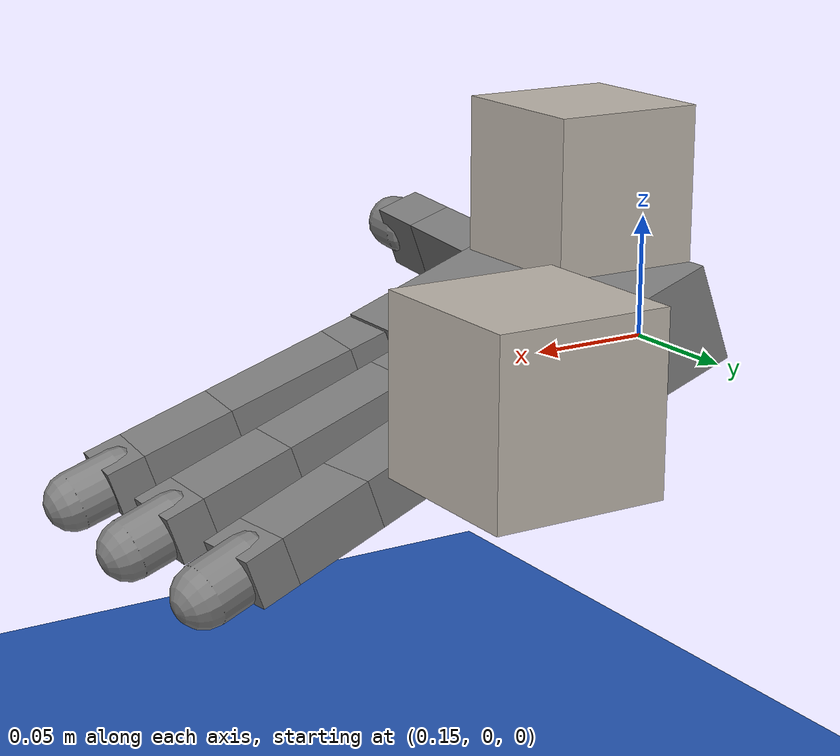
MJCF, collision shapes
<mujoco model="Allegro Hand Cube Rotation">
  <include file="../common.xml"/>

  <size memory="1M"/>

  <option integrator="implicitfast" iterations="100" ls_iterations="50"/>

  <custom>
    <!-- agent -->
    <numeric name="agent_planner" data="0" />
    <numeric name="agent_horizon" data="0.25" />
    <numeric name="agent_timestep" data="0.01" />
    <numeric name="agent_policy_width" data="0.0035" />
    <numeric name="sampling_spline_points" data="3" />
    <numeric name="sampling_exploration" data="0.2" />
    <numeric name="sampling_trajectories" data="125" />
    <numeric name="sampling_representation" data="0" />
    <numeric name="robust_xfrc" data="0.004" />
    <numeric name="gradient_spline_points" data="3" />
    <numeric name="stdev_min" data="0.2" />

    <!-- cem -->
    <numeric name="n_elites" data="10" />

    <!-- mppi -->
    <numeric name="mu_init" data="0.2" />
  </custom>

  <!-- Set the camera viewpoint -->
  <statistic extent="0.4" center="0.3 0.1 0"/>
  <visual>
    <quality shadowsize="8192"/>
    <global azimuth="180" elevation="-30"/>
  </visual>

  <!-- Set default friction coefficient -->
  <default>
    <geom friction=".3"/>
  </default>

  <!-- Create the scene, including floor and the interactive target cube. -->
  <worldbody>
    <light pos="0 -0.1 0.5" dir="0 0.2 -1" diffuse="0.7 0.7 0.7" specular="0.3 0.3 0.3"
        directional="true" castshadow="true"/>
    <geom name="floor" pos="0 0 -0.2" size="0 0 0.05" type="plane" material="blue_grid"/>
    <body name="goal" pos="0.325 0.17 0.0475">
      <joint type="ball" damping="0.001"/>
      <geom type="box" size=".03 .03 .03" mass=".124" material="cube" contype="0" conaffinity="0"/>
    </body>
  </worldbody>

  <sensor>
    <!-- Residuals -->
    <user name="Cube Position" dim="3" user="1 75 0 100 0.02 2"/>
    <user name="Cube Orientation" dim="3" user="0 7.5 0 10" />
    <user name="Cube Velocity" dim="3" user="0 10 0 20" />
    <user name="Actuation" dim="16" user="0 1 0.0 10" />
    <user name="Grasp" dim="16" user="0 0.1 0.0 10" />
    <user name="Joint Vel" dim="16" user="0 1.0e-3 0.0 0.1" />

    <!-- Measurements we want to use -->
    <framequat name="cube_goal_orientation" objtype="body" objname="goal"/>
  </sensor>

  <include file="cube.xml"/>
  <include file="right_hand.xml"/>

  <keyframe>
    <key qpos='1 0 0 0 0.2 0.025 0.075 1 0 0 0 0 0.58058 0.701595 0.538675 0 0.60767 0.758085 0.741625 0 0.8876 0.720425 0.5848 0.263 0.32612 1.08493 0.806715'/>
  </keyframe>
</mujoco>

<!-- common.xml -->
<mujoco>

  <visual>
    <headlight ambient=".4 .4 .4" diffuse=".8 .8 .8" specular="0.1 0.1 0.1"/>
    <map znear=".01"/>
    <quality shadowsize="2048"/>
    <global elevation="-15"/>
  </visual>

  <asset>
    <texture name="blue_grid" type="2d" builtin="checker" rgb1=".02 .14 .44" rgb2=".27 .55 1" width="300" height="300" mark="edge" markrgb="1 1 1"/>
    <material name="blue_grid" texture="blue_grid" texrepeat="1 1" texuniform="true" reflectance=".2"/>

    <texture name="grey_grid" type="2d" builtin="checker" rgb1=".26 .26 .26" rgb2=".6 .6 .6" width="300" height="300" mark="edge" markrgb="1 1 1"/>
    <material name="grey_grid" texture="grey_grid" texrepeat="1 1" texuniform="true" reflectance=".2"/>
    <texture name="skybox" type="skybox" builtin="gradient" rgb1=".66 .79 1" rgb2=".9 .91 .93" width="800" height="800"/>

    <material name="self" rgba=".7 .5 .3 1"/>
    <material name="self_default" rgba=".7 .5 .3 1"/>
    <material name="self_highlight" rgba="0 .5 .3 1"/>
    <material name="effector" rgba=".7 .4 .2 1"/>
    <material name="effector_default" rgba=".7 .4 .2 1"/>
    <material name="effector_highlight" rgba="0 .5 .3 1"/>
    <material name="decoration" rgba=".2 .6 .3 1"/>
    <material name="eye" rgba="0 .2 1 1"/>
    <material name="target" rgba=".6 .3 .3 1"/>
    <material name="target_default" rgba=".6 .3 .3 1"/>
    <material name="target_highlight" rgba=".6 .3 .3 .4"/>
    <material name="site" rgba=".5 .5 .5 .3"/>
  </asset>
</mujoco>

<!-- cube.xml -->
<mujoco>
  <asset>
    <texture name="cube" type="cube"
             fileup="assets/fileup.png" fileback="assets/fileback.png"
             filedown="assets/filedown.png" filefront="assets/filefront.png"
             fileleft="assets/fileleft.png" fileright="assets/fileright.png"/>
    <material name="cube" texture="cube"/>
    <texture name="graycube" type="cube" fileup="assets/grayup.png"
             fileback="assets/grayback.png" filedown="assets/graydown.png"
             filefront="assets/grayfront.png" fileleft="assets/grayleft.png"
             fileright="assets/grayright.png"/>
    <material name="graycube" texture="graycube"/>
  </asset>
  <worldbody>
    <light pos="0 0 1"/>
    <body name="cube" pos="0.2 0.025 0.075" quat="1 0 0 0">
      <freejoint/>
      <geom name="cube" type="box" size=".03 .03 .03" mass=".122" material="cube"/>
    </body>
  </worldbody>

   <sensor>
        <framepos name="trace0" objtype="body" objname="cube"/>
        <framepos name="cube_position" objtype="body" objname="cube"/>
        <framequat name="cube_orientation" objtype="body" objname="cube"/>
        <framelinvel name="cube_linear_velocity" objtype="body" objname="cube"/>
        <frameangvel name="cube_angular_velocity" objtype="body" objname="cube"/>
    </sensor>
</mujoco>

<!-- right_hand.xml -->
<mujoco model="allegro_right">
  <!-- Model of the allegro hand, adopted from mujoco_menagerie, https://github.com/google-deepmind/mujoco_menagerie/tree/main/wonik_allegro -->
  <compiler angle="radian" meshdir="assets" autolimits="true"/>

  <option cone="elliptic" impratio="10"/>

  <default>
    <default class="allegro_right">
      <joint axis="0 1 0" damping=".1"/>
      <position kp="0.5"/>
      <geom density="800"/>

      <default class="visual">
        <geom type="mesh" contype="0" conaffinity="0" group="2" material="black"/>
        <default class="palm_visual">
          <geom mesh="base_link"/>
        </default>
        <default class="base_visual">
          <geom mesh="link_0.0"/>
        </default>
        <default class="proximal_visual">
          <geom mesh="link_1.0"/>
        </default>
        <default class="medial_visual">
          <geom mesh="link_2.0"/>
        </default>
        <default class="distal_visual">
          <geom mesh="link_3.0"/>
        </default>
        <default class="fingertip_visual">
          <geom pos="0 0 0.0267" material="white" mesh="link_3.0_tip"/>
        </default>
        <default class="thumbtip_visual">
          <geom pos="0 0 0.0423" material="white" mesh="link_15.0_tip"/>
        </default>
      </default>

      <default class="collision">
        <geom group="3" type="box" mass="0"/>
        <default class="palm_collision">
          <geom size="0.0204 0.0565 0.0475" pos="-0.0093 0 -0.0475"/>
        </default>
        <default class="base_collision">
          <geom size="0.0098 0.01375 0.0082" pos="0 0 0.0082"/>
          <default class="thumb_base_collision">
            <geom size="0.0179 0.017 0.02275" pos="-0.0179 0.009 0.0145"/>
          </default>
        </default>
        <default class="proximal_collision">
          <geom size="0.0098 0.01375 0.027" pos="0 0 0.027"/>
          <default class="thumb_proximal_collision">
            <geom size="0.0098 0.01375 0.00885" pos="0 0 0.00885"/>
          </default>
        </default>
        <default class="medial_collision">
          <geom size="0.0098 0.01375 0.0192" pos="0 0 0.0192"/>
          <default class="thumb_medial_collision">
            <geom size="0.0098 0.01375 0.0257" pos="0 0 0.0257"/>
          </default>
        </default>
        <default class="distal_collision">
          <geom size="0.0098 0.01375 0.008" pos="0 0 0.008"/>
          <default class="thumb_distal_collision">
            <geom size="0.0098 0.01375 0.0157" pos="0 0 0.0157"/>
          </default>
        </default>
        <default class="fingertip_collision">
          <geom type="capsule" size="0.012 0.01" pos="0 0 0.019"/>
          <default class="thumbtip_collision">
            <geom type="capsule" size="0.012 0.008" pos="0 0 0.035"/>
          </default>
        </default>
      </default>

      <default class="base">
        <joint axis="0 0 1" range="-0.47 0.47"/>
        <position ctrlrange="-0.47 0.47"/>
      </default>
      <default class="proximal">
        <joint range="-0.196 1.61"/>
        <position ctrlrange="-0.196 1.61"/>
      </default>
      <default class="medial">
        <joint range="-0.174 1.709"/>
        <position ctrlrange="-0.174 1.709"/>
      </default>
      <default class="distal">
        <joint range="-0.227 1.618"/>
        <position ctrlrange="-0.227 1.618"/>
      </default>
      <default class="thumb_base">
        <joint axis="-1 0 0" range="0.263 1.396"/>
        <position ctrlrange="0.263 1.396"/>
      </default>
      <default class="thumb_proximal">
        <joint axis="0 0 1" range="-0.105 1.163"/>
        <position ctrlrange="-0.105 1.163"/>
      </default>
      <default class="thumb_medial">
        <joint range="-0.189 1.644"/>
        <position ctrlrange="-0.189 1.644"/>
      </default>
      <default class="thumb_distal">
        <joint range="-0.162 1.719"/>
        <position ctrlrange="-0.162 1.719"/>
      </default>
    </default>
  </default>

  <asset>
    <material name="black" rgba="0.2 0.2 0.2 1"/>
    <material name="white" rgba="0.9 0.9 0.9 1"/>

    <mesh file="base_link.stl"/>
    <mesh file="link_0.0.stl"/>
    <mesh file="link_1.0.stl"/>
    <mesh file="link_2.0.stl"/>
    <mesh file="link_3.0.stl"/>
    <mesh file="link_3.0_tip.stl"/>
    <mesh file="link_12.0_right.stl"/>
    <mesh file="link_13.0.stl"/>
    <mesh file="link_14.0.stl"/>
    <mesh file="link_15.0.stl"/>
    <mesh file="link_15.0_tip.stl"/>
  </asset>

  <worldbody>
    <body name="palm" pos="0.25 0 0" quat="0 1 0 0.7" childclass="allegro_right">
      <geom class="palm_visual" mesh="base_link"/>
      <geom class="palm_collision"/>
      <!-- First finger -->
      <body name="ff_base" pos="0 0.0435 -0.001542" quat="0.999048 -0.0436194 0 0">
        <joint name="ffj0" class="base"/>
        <geom class="base_visual"/>
        <geom class="base_collision"/>
        <body name="ff_proximal" pos="0 0 0.0164">
          <joint name="ffj1" class="proximal"/>
          <geom class="proximal_visual"/>
          <geom class="proximal_collision"/>
          <body name="ff_medial" pos="0 0 0.054">
            <joint name="ffj2" class="medial"/>
            <geom class="medial_visual"/>
            <geom class="medial_collision"/>
            <body name="ff_distal" pos="0 0 0.0384">
              <joint name="ffj3" class="distal"/>
              <geom class="distal_visual"/>
              <geom class="distal_collision"/>
              <body name="ff_tip">
                <geom class="fingertip_visual"/>
                <geom class="fingertip_collision"/>
                <site name="tip" pos="0 0 0"/>
              </body>
            </body>
          </body>
        </body>
      </body>
      <!-- Middle finger -->
      <body name="mf_base" pos="0 0 0.0007">
        <joint name="mfj0" class="base"/>
        <geom class="base_visual"/>
        <geom class="base_collision"/>
        <body name="mf_proximal" pos="0 0 0.0164">
          <joint name="mfj1" class="proximal"/>
          <geom class="proximal_visual"/>
          <geom class="proximal_collision"/>
          <body name="mf_medial" pos="0 0 0.054">
            <joint name="mfj2" class="medial"/>
            <geom class="medial_visual"/>
            <geom class="medial_collision"/>
            <body name="mf_distal" pos="0 0 0.0384">
              <joint name="mfj3" class="distal"/>
              <geom class="distal_visual"/>
              <geom class="distal_collision"/>
              <body name="mf_tip">
                <geom class="fingertip_visual"/>
                <geom class="fingertip_collision"/>
              </body>
            </body>
          </body>
        </body>
      </body>
      <!-- Ring finger -->
      <body name="rf_base" pos="0 -0.0435 -0.001542" quat="0.999048 0.0436194 0 0">
        <joint name="rfj0" class="base"/>
        <geom class="base_visual"/>
        <geom class="base_collision"/>
        <body name="rf_proximal" pos="0 0 0.0164">
          <joint name="rfj1" class="proximal"/>
          <geom class="proximal_visual"/>
          <geom class="proximal_collision"/>
          <body name="rf_medial" pos="0 0 0.054">
            <joint name="rfj2" class="medial"/>
            <geom class="medial_visual"/>
            <geom class="medial_collision"/>
            <body name="rf_distal" pos="0 0 0.0384">
              <joint name="rfj3" class="distal"/>
              <geom class="distal_visual"/>
              <geom class="distal_collision"/>
              <body name="rf_tip">
                <geom class="fingertip_visual"/>
                <geom class="fingertip_collision"/>
              </body>
            </body>
          </body>
        </body>
      </body>
      <!-- Thumb -->
      <body name="th_base" pos="-0.0182 0.019333 -0.045987" quat="0.477714 -0.521334 -0.521334 -0.477714">
        <joint name="thj0" class="thumb_base"/>
        <geom class="visual" mesh="link_12.0_right"/>
        <geom class="thumb_base_collision"/>
        <body name="th_proximal" pos="-0.027 0.005 0.0399">
          <joint name="thj1" class="thumb_proximal"/>
          <geom class="visual" mesh="link_13.0"/>
          <geom class="thumb_proximal_collision"/>
          <body name="th_medial" pos="0 0 0.0177">
            <joint name="thj2" class="thumb_medial"/>
            <geom class="visual" mesh="link_14.0"/>
            <geom class="thumb_medial_collision"/>
            <body name="th_distal" pos="0 0 0.0514">
              <joint name="thj3" class="thumb_distal"/>
              <geom class="visual" mesh="link_15.0"/>
              <geom class="thumb_distal_collision"/>
              <body name="th_tip">
                <geom class="thumbtip_visual"/>
                <geom class="thumbtip_collision"/>
              </body>
            </body>
          </body>
        </body>
      </body>
    </body>
  </worldbody>

  <contact>
    <exclude body1="palm" body2="ff_base"/>
    <exclude body1="palm" body2="mf_base"/>
    <exclude body1="palm" body2="rf_base"/>
    <exclude body1="palm" body2="th_base"/>
    <exclude body1="palm" body2="th_proximal"/>
  </contact>

  <actuator>
    <position name="ffa0" joint="ffj0" class="base"/>
    <position name="ffa1" joint="ffj1" class="proximal"/>
    <position name="ffa2" joint="ffj2" class="medial"/>
    <position name="ffa3" joint="ffj3" class="distal"/>
    <position name="mfa0" joint="mfj0" class="base"/>
    <position name="mfa1" joint="mfj1" class="proximal"/>
    <position name="mfa2" joint="mfj2" class="medial"/>
    <position name="mfa3" joint="mfj3" class="distal"/>
    <position name="rfa0" joint="rfj0" class="base"/>
    <position name="rfa1" joint="rfj1" class="proximal"/>
    <position name="rfa2" joint="rfj2" class="medial"/>
    <position name="rfa3" joint="rfj3" class="distal"/>
    <position name="tha0" joint="thj0" class="thumb_base"/>
    <position name="tha1" joint="thj1" class="thumb_proximal"/>
    <position name="tha2" joint="thj2" class="thumb_medial"/>
    <position name="tha3" joint="thj3" class="thumb_distal"/>
  </actuator>

  <!-- Traces for visualizing rollouts -->
  <sensor>
    <framepos name="trace1" objtype="body" objname="rf_tip"/>
    <framepos name="trace2" objtype="body" objname="ff_tip"/>
    <framepos name="trace3" objtype="body" objname="mf_tip"/>
    <framepos name="trace4" objtype="body" objname="th_tip"/>
  </sensor>
</mujoco>
